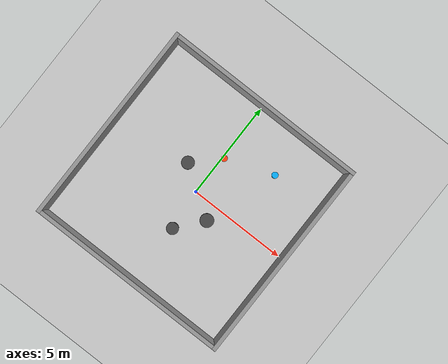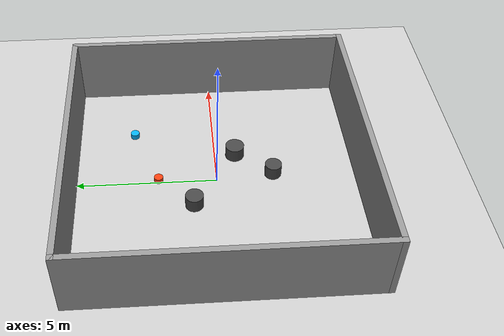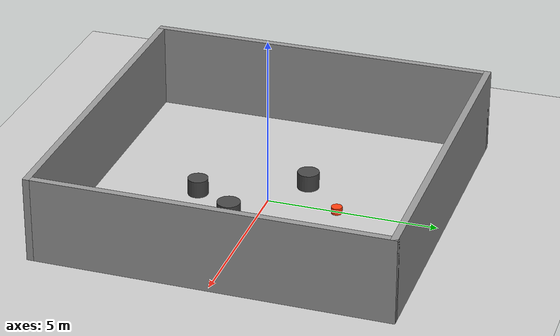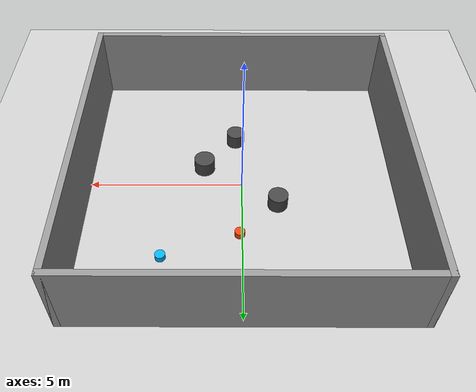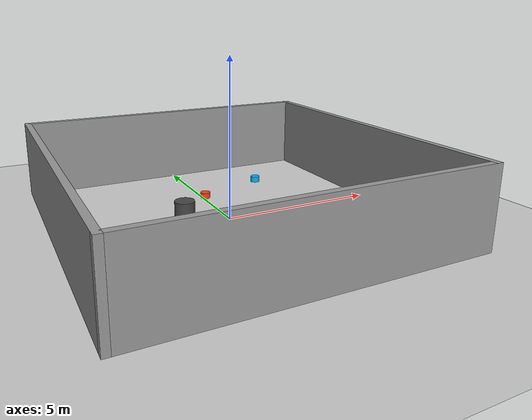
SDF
<?xml version="1.0" ?>
<sdf version="1.5">
  <world name="default">
    <include>
      <uri>model://sun</uri>
    </include>

    <include>
      <uri>model://ground_plane</uri>
    </include>

    <model name="pursuer_complex">
      <pose>0.08 2.08 0.12 0 0 0</pose>
      <link name="body">
        <collision name="collision">
          <geometry>
            <cylinder>
              <radius>0.16</radius>
              <length>0.20</length>
            </cylinder>
          </geometry>
        </collision>
        <visual name="visual">
          <geometry>
            <cylinder>
              <radius>0.16</radius>
              <length>0.20</length>
            </cylinder>
          </geometry>
          <material>
            <ambient>1.0 0.12 0.04 1</ambient>
            <diffuse>1.0 0.25 0.06 1</diffuse>
          </material>
        </visual>
        <inertial>
          <mass>1.0</mass>
          <inertia>
            <ixx>0.005</ixx>
            <iyy>0.005</iyy>
            <izz>0.005</izz>
            <ixy>0</ixy>
            <ixz>0</ixz>
            <iyz>0</iyz>
          </inertia>
        </inertial>
      </link>
    </model>

    <model name="evader_complex">
      <pose>2.47 2.94 0.12 0 0 0</pose>
      <link name="body">
        <collision name="collision">
          <geometry>
            <cylinder>
              <radius>0.16</radius>
              <length>0.20</length>
            </cylinder>
          </geometry>
        </collision>
        <visual name="visual">
          <geometry>
            <cylinder>
              <radius>0.16</radius>
              <length>0.20</length>
            </cylinder>
          </geometry>
          <material>
            <ambient>0.00 0.45 1.0 1</ambient>
            <diffuse>0.02 0.70 1.0 1</diffuse>
          </material>
        </visual>
        <inertial>
          <mass>1.0</mass>
          <inertia>
            <ixx>0.005</ixx>
            <iyy>0.005</iyy>
            <izz>0.005</izz>
            <ixy>0</ixy>
            <ixz>0</ixz>
            <iyz>0</iyz>
          </inertia>
        </inertial>
      </link>
    </model>

    <model name="obstacle_left">
      <pose>-1.15 0.85 0.25 0 0 0</pose>
      <static>1</static>
      <link name="body">
        <collision name="collision">
          <geometry>
            <cylinder>
              <radius>0.32</radius>
              <length>0.50</length>
            </cylinder>
          </geometry>
        </collision>
        <visual name="visual">
          <geometry>
            <cylinder>
              <radius>0.32</radius>
              <length>0.50</length>
            </cylinder>
          </geometry>
          <material>
            <ambient>0.15 0.15 0.15 1</ambient>
            <diffuse>0.28 0.28 0.28 1</diffuse>
          </material>
        </visual>
      </link>
    </model>

    <model name="obstacle_right">
      <pose>1.25 -0.75 0.25 0 0 0</pose>
      <static>1</static>
      <link name="body">
        <collision name="collision">
          <geometry>
            <cylinder>
              <radius>0.34</radius>
              <length>0.50</length>
            </cylinder>
          </geometry>
        </collision>
        <visual name="visual">
          <geometry>
            <cylinder>
              <radius>0.34</radius>
              <length>0.50</length>
            </cylinder>
          </geometry>
          <material>
            <ambient>0.15 0.15 0.15 1</ambient>
            <diffuse>0.28 0.28 0.28 1</diffuse>
          </material>
        </visual>
      </link>
    </model>

    <model name="obstacle_lower">
      <pose>0.20 -2.05 0.25 0 0 0</pose>
      <static>1</static>
      <link name="body">
        <collision name="collision">
          <geometry>
            <cylinder>
              <radius>0.30</radius>
              <length>0.50</length>
            </cylinder>
          </geometry>
        </collision>
        <visual name="visual">
          <geometry>
            <cylinder>
              <radius>0.30</radius>
              <length>0.50</length>
            </cylinder>
          </geometry>
          <material>
            <ambient>0.15 0.15 0.15 1</ambient>
            <diffuse>0.28 0.28 0.28 1</diffuse>
          </material>
        </visual>
      </link>
    </model>

    <model name="myroom10">
      <pose frame="">0 0 0 0 0 0</pose>
      <link name="Wall_4">
        <collision name="Wall_4_Collision">
          <geometry>
            <box>
              <size>10.4 0.2 2.5</size>
            </box>
          </geometry>
          <pose frame="">0 0 1.25 0 0 0</pose>
        </collision>
        <visual name="Wall_4_Visual">
          <pose frame="">0 0 1.25 0 0 0</pose>
          <geometry>
            <box>
              <size>10.4 0.2 2.5</size>
            </box>
          </geometry>
          <material>
            <script>
              <uri>file://media/materials/scripts/gazebo.material</uri>
              <name>Gazebo/Grey</name>
            </script>
            <ambient>1 1 1 1</ambient>
          </material>
        </visual>
        <pose frame="">-5.1 0 0 0 0 1.5708</pose>
      </link>
      <link name="Wall_5">
        <collision name="Wall_5_Collision">
          <geometry>
            <box>
              <size>10.4 0.2 2.5</size>
            </box>
          </geometry>
          <pose frame="">0 0 1.25 0 0 0</pose>
        </collision>
        <visual name="Wall_5_Visual">
          <pose frame="">0 0 1.25 0 0 0</pose>
          <geometry>
            <box>
              <size>10.4 0.2 2.5</size>
            </box>
          </geometry>
          <material>
            <script>
              <uri>file://media/materials/scripts/gazebo.material</uri>
              <name>Gazebo/Grey</name>
            </script>
            <ambient>1 1 1 1</ambient>
          </material>
        </visual>
        <pose frame="">0 5.1 0 0 0 0</pose>
      </link>
      <link name="Wall_6">
        <collision name="Wall_6_Collision">
          <geometry>
            <box>
              <size>10.4 0.2 2.5</size>
            </box>
          </geometry>
          <pose frame="">0 0 1.25 0 0 0</pose>
        </collision>
        <visual name="Wall_6_Visual">
          <pose frame="">0 0 1.25 0 0 0</pose>
          <geometry>
            <box>
              <size>10.4 0.2 2.5</size>
            </box>
          </geometry>
          <material>
            <script>
              <uri>file://media/materials/scripts/gazebo.material</uri>
              <name>Gazebo/Grey</name>
            </script>
            <ambient>1 1 1 1</ambient>
          </material>
        </visual>
        <pose frame="">5.1 0 0 0 0 -1.5708</pose>
      </link>
      <link name="Wall_7">
        <collision name="Wall_7_Collision">
          <geometry>
            <box>
              <size>10.4 0.2 2.5</size>
            </box>
          </geometry>
          <pose frame="">0 0 1.25 0 0 0</pose>
        </collision>
        <visual name="Wall_7_Visual">
          <pose frame="">0 0 1.25 0 0 0</pose>
          <geometry>
            <box>
              <size>10.4 0.2 2.5</size>
            </box>
          </geometry>
          <material>
            <script>
              <uri>file://media/materials/scripts/gazebo.material</uri>
              <name>Gazebo/Grey</name>
            </script>
            <ambient>1 1 1 1</ambient>
          </material>
        </visual>
        <pose frame="">0 -5.1 0 0 0 3.14159</pose>
      </link>
      <static>1</static>
    </model>
  </world>
</sdf>
